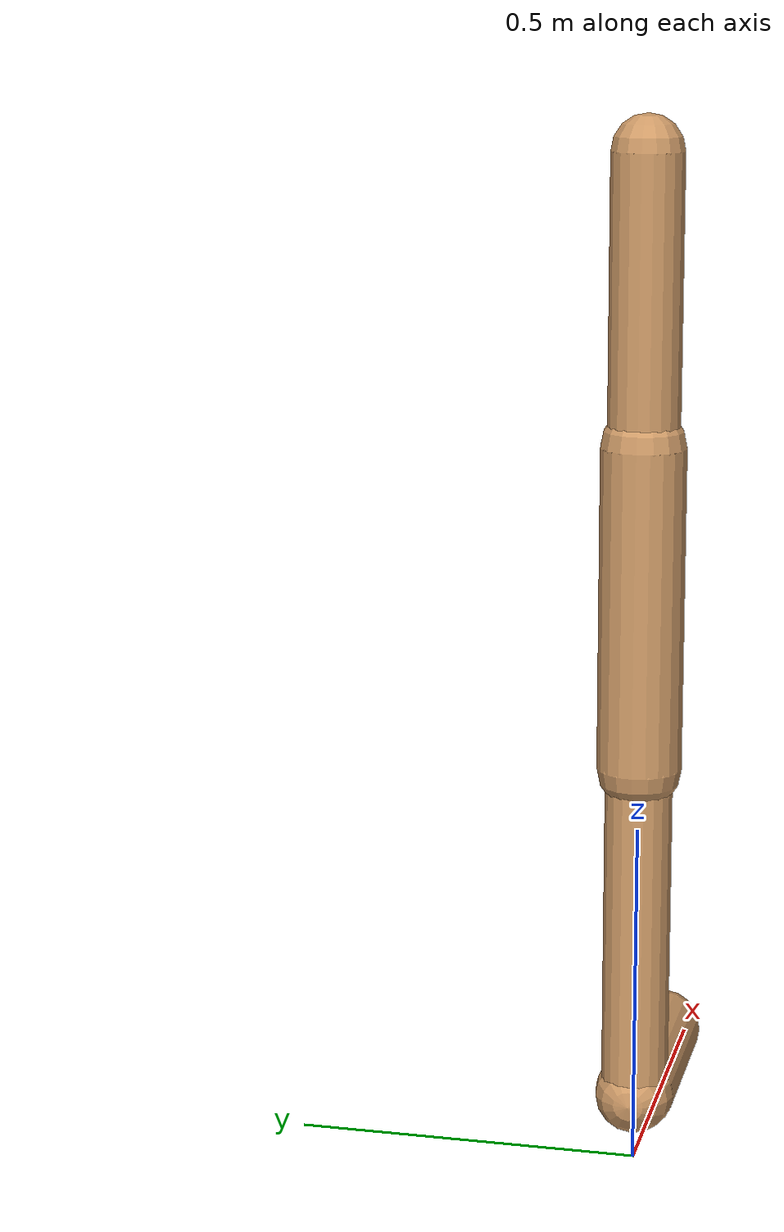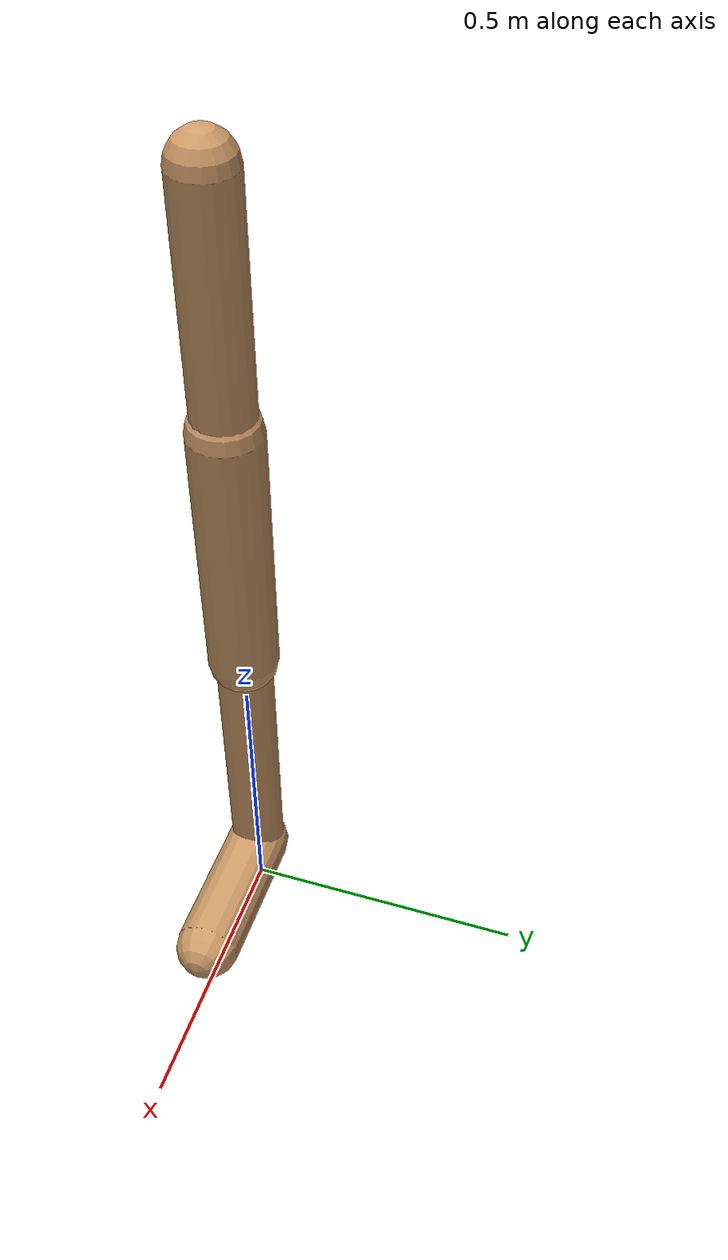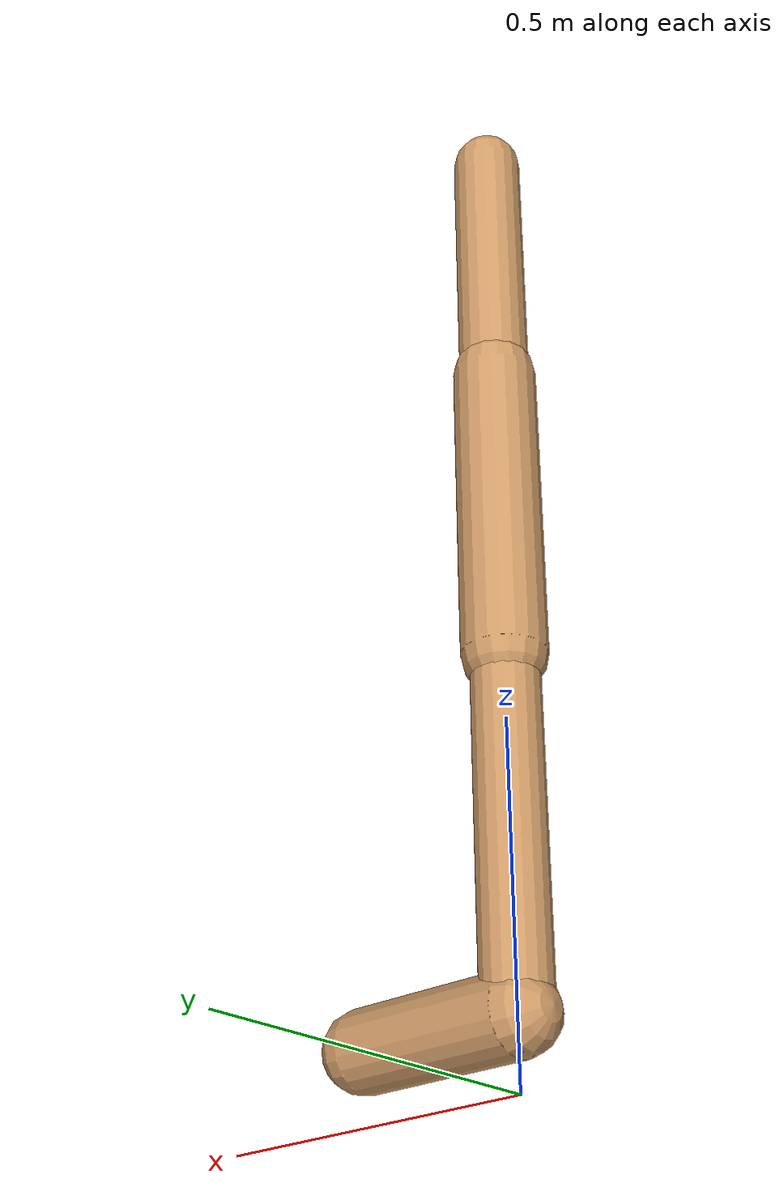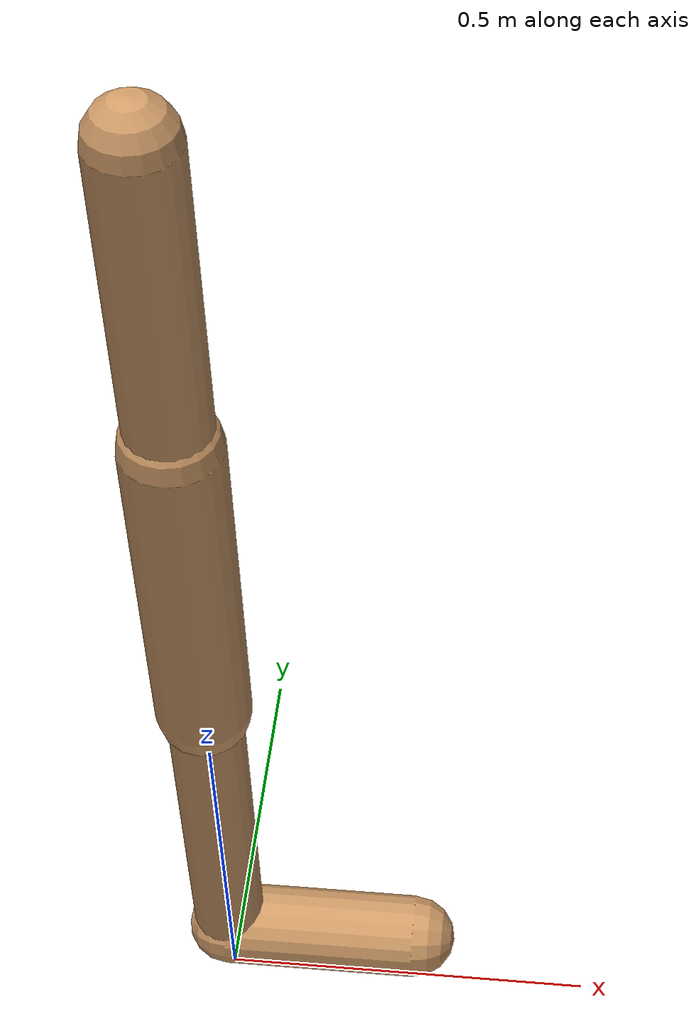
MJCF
<mujoco model="walker2d">
  <compiler angle="degree" coordinate="global" inertiafromgeom="true" />
  <default>
    <joint armature="0.01" damping=".1" limited="true" />
    <geom conaffinity="0" condim="3" contype="1" density="1000" friction="0.8 .1 .1" rgba="0.8 0.6 .4 1" />
  </default>
  <option integrator="RK4" timestep="0.002" />
  <worldbody>

    <body name="torso" pos="0 0 0.01404014623908245">
      <joint armature="0" axis="1 0 0" damping="0" limited="false" name="ignorex" pos="0 0 0" stiffness="0" type="slide" />
      <joint armature="0" axis="0 0 1" damping="0" limited="false" name="ignorez" pos="0 0 0" ref="1.25" stiffness="0" type="slide" />
      <joint armature="0" axis="0 1 0" damping="0" limited="false" name="ignorey" pos="0 0 0" stiffness="0" type="hinge" />
      <geom fromto="0 0 1.45 0 0 1.05" name="torso_geom" size="0.050866037218776854" type="capsule" />
      <body name="thigh">
        <joint axis="0 -1 0" name="thigh_joint" pos="0 0 1.05" range="-150 0" type="hinge" />
        <geom fromto="0.0 0.0 1.05 0.0 0.0 0.5933494044130662" name="thigh_geom" size="0.06026421109419755" type="capsule" />
        <body name="leg" pos="0.0 0.0 -0.006650595586933816">
          <joint axis="0 -1 0" name="leg_joint" pos="0 0 0.6" range="-150 0" type="hinge" />
          <geom fromto="0.0 0.0 0.6 0.0 0.0 0.09261044934785134" name="leg_geom" size="0.04821136887535804" type="capsule" />
          <body name="foot" pos="0.0 0.0 -0.007389550652148663">
            <joint axis="0 -1 0" name="foot_joint" pos="0 0 0.1" range="-45 45" type="hinge" />
            <geom fromto="-0.0 0.0 0.1 0.259825534204257 0.0 0.1" name="foot_geom" size="0.056810023876879584" type="capsule" />
          </body>
        </body>
      </body>

      <body name="thigh_left">
        <joint axis="0 -1 0" name="thigh_left_joint" pos="0 0 1.05" range="-150 0" type="hinge" />
        <geom fromto="0.0 0.0 1.05 0.0 0.0 0.5933494044130662" name="thigh_left_geom" rgba=".7 .3 .6 1" size="0.06026421109419755" type="capsule" />
        <body name="leg_left" pos="0.0 0.0 -0.006650595586933816">
          <joint axis="0 -1 0" name="leg_left_joint" pos="0 0 0.6" range="-150 0" type="hinge" />
          <geom fromto="0.0 0.0 0.6 0.0 0.0 0.09261044934785134" name="leg_left_geom" rgba=".7 .3 .6 1" size="0.04821136887535804" type="capsule" />
          <body name="foot_left" pos="0.0 0.0 -0.007389550652148663">
            <joint axis="0 -1 0" name="foot_left_joint" pos="0 0 0.1" range="-45 45" type="hinge" />
            <geom fromto="-0.0 0.0 0.1 0.259825534204257 0.0 0.1" name="foot_left_geom" rgba=".7 .3 .6 1" size="0.056810023876879584" type="capsule" />
          </body>
        </body>
      </body>
    </body>
  </worldbody>
  <actuator>

    <motor ctrllimited="true" ctrlrange="-1.0 1.0" gear="100" joint="thigh_joint" />
    <motor ctrllimited="true" ctrlrange="-1.0 1.0" gear="100" joint="leg_joint" />
    <motor ctrllimited="true" ctrlrange="-1.0 1.0" gear="100" joint="foot_joint" />
    <motor ctrllimited="true" ctrlrange="-1.0 1.0" gear="100" joint="thigh_left_joint" />
    <motor ctrllimited="true" ctrlrange="-1.0 1.0" gear="100" joint="leg_left_joint" />
    <motor ctrllimited="true" ctrlrange="-1.0 1.0" gear="100" joint="foot_left_joint" />

  </actuator>
</mujoco>
